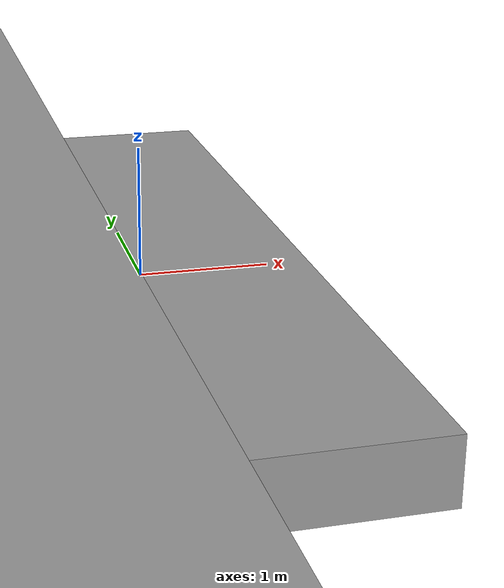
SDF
<?xml version='1.0'?>
<sdf version='1.7'>
  <model name='floor'>
    <link name='link'>
      <inertial>
        <mass>0.744775</mass>
        <inertia>
          <ixx>2.73127</ixx>
          <ixy>0</ixy>
          <ixz>0</ixz>
          <iyy>0.124907</iyy>
          <iyz>0</iyz>
          <izz>2.82919</izz>
        </inertia>
        <pose>0 0 0 0 -0 0</pose>
      </inertial>
      <self_collide>0</self_collide>
      <enable_wind>0</enable_wind>
      <kinematic>0</kinematic>
      <pose>0.468312 -0.080589 -1e-06 0 -0 0.004812</pose>
      <gravity>1</gravity>
      <visual name='visual'>
        <geometry>
          <box>
            <size>1.33984 6.61737 0.466229</size>
          </box>
        </geometry>
        <material>
          <script>
            <name>Gazebo/Grey</name>
            <uri>file://media/materials/scripts/gazebo.material</uri>
          </script>
          <shader type='pixel'>
            <normal_map>__default__</normal_map>
          </shader>
        </material>
        <pose>0 0 0 0 -0 0</pose>
        <transparency>0</transparency>
        <cast_shadows>1</cast_shadows>
      </visual>
      <collision name='collision'>
        <laser_retro>0</laser_retro>
        <max_contacts>10</max_contacts>
        <pose>0 0 0 0 -0 0</pose>
        <geometry>
          <box>
            <size>1.33984 6.61737 0.466229</size>
          </box>
        </geometry>
        <surface>
          <friction>
            <ode>
              <mu>1</mu>
              <mu2>1</mu2>
              <fdir1>0 0 0</fdir1>
              <slip1>0</slip1>
              <slip2>0</slip2>
            </ode>
            <torsional>
              <coefficient>1</coefficient>
              <patch_radius>0</patch_radius>
              <surface_radius>0</surface_radius>
              <use_patch_radius>1</use_patch_radius>
              <ode>
                <slip>0</slip>
              </ode>
            </torsional>
          </friction>
          <bounce>
            <restitution_coefficient>0</restitution_coefficient>
            <threshold>1e+06</threshold>
          </bounce>
          <contact>
            <collide_without_contact>0</collide_without_contact>
            <collide_without_contact_bitmask>1</collide_without_contact_bitmask>
            <collide_bitmask>1</collide_bitmask>
            <ode>
              <soft_cfm>0</soft_cfm>
              <soft_erp>0.2</soft_erp>
              <kp>1e+13</kp>
              <kd>1</kd>
              <max_vel>0.01</max_vel>
              <min_depth>0</min_depth>
            </ode>
            <bullet>
              <split_impulse>1</split_impulse>
              <split_impulse_penetration_threshold>-0.01</split_impulse_penetration_threshold>
              <soft_cfm>0</soft_cfm>
              <soft_erp>0.2</soft_erp>
              <kp>1e+13</kp>
              <kd>1</kd>
            </bullet>
          </contact>
        </surface>
      </collision>
    </link>
    <link name='link_0'>
      <inertial>
        <mass>122.325</mass>
        <inertia>
          <ixx>3900.99</ixx>
          <ixy>0</ixy>
          <ixz>0</ixz>
          <iyy>867.354</iyy>
          <iyz>0</iyz>
          <izz>4758.91</izz>
        </inertia>
        <pose>0 0 0 0 -0 0</pose>
      </inertial>
      <pose>-4.81385 -0.096673 0.220146 0 -0 0.006694</pose>
      <gravity>1</gravity>
      <self_collide>0</self_collide>
      <kinematic>0</kinematic>
      <enable_wind>0</enable_wind>
      <visual name='visual'>
        <pose>0 0 0 0 -0 0</pose>
        <geometry>
          <box>
            <size>9.19914 19.5505 0.466229</size>
          </box>
        </geometry>
        <material>
          <lighting>1</lighting>
          <script>
            <uri>file://media/materials/scripts/gazebo.material</uri>
            <name>Gazebo/Grey</name>
          </script>
          <shader type='pixel'>
            <normal_map>__default__</normal_map>
          </shader>
          <ambient>0.3 0.3 0.3 1</ambient>
          <diffuse>0.7 0.7 0.7 1</diffuse>
          <specular>0.01 0.01 0.01 1</specular>
          <emissive>0 0 0 1</emissive>
        </material>
        <transparency>0</transparency>
        <cast_shadows>1</cast_shadows>
      </visual>
      <collision name='collision'>
        <laser_retro>0</laser_retro>
        <max_contacts>10</max_contacts>
        <pose>0 0 0 0 -0 0</pose>
        <geometry>
          <box>
            <size>9.19914 19.5505 0.466229</size>
          </box>
        </geometry>
        <surface>
          <friction>
            <ode>
              <mu>1</mu>
              <mu2>1</mu2>
              <fdir1>0 0 0</fdir1>
              <slip1>0</slip1>
              <slip2>0</slip2>
            </ode>
            <torsional>
              <coefficient>1</coefficient>
              <patch_radius>0</patch_radius>
              <surface_radius>0</surface_radius>
              <use_patch_radius>1</use_patch_radius>
              <ode>
                <slip>0</slip>
              </ode>
            </torsional>
          </friction>
          <bounce>
            <restitution_coefficient>0</restitution_coefficient>
            <threshold>1e+06</threshold>
          </bounce>
          <contact>
            <collide_without_contact>0</collide_without_contact>
            <collide_without_contact_bitmask>1</collide_without_contact_bitmask>
            <collide_bitmask>1</collide_bitmask>
            <ode>
              <soft_cfm>0</soft_cfm>
              <soft_erp>0.2</soft_erp>
              <kp>1e+13</kp>
              <kd>1</kd>
              <max_vel>0.01</max_vel>
              <min_depth>0</min_depth>
            </ode>
            <bullet>
              <split_impulse>1</split_impulse>
              <split_impulse_penetration_threshold>-0.01</split_impulse_penetration_threshold>
              <soft_cfm>0</soft_cfm>
              <soft_erp>0.2</soft_erp>
              <kp>1e+13</kp>
              <kd>1</kd>
            </bullet>
          </contact>
        </surface>
      </collision>
    </link>
    <static>0</static>
    <allow_auto_disable>1</allow_auto_disable>
  </model>
</sdf>
